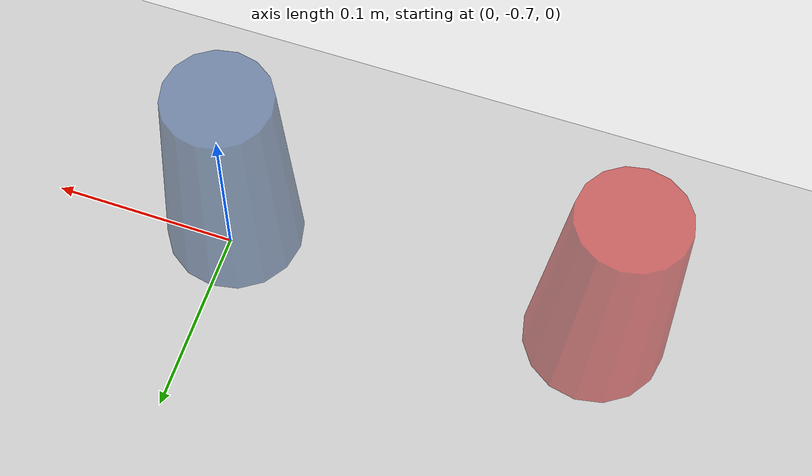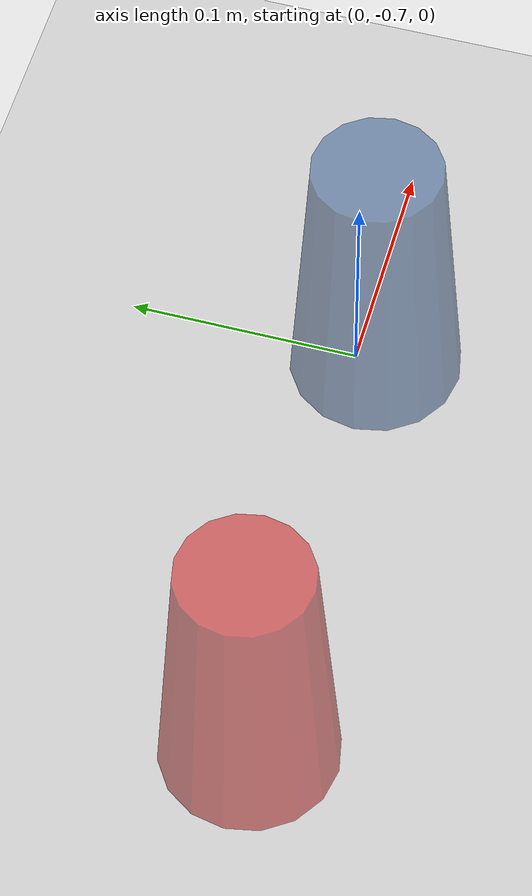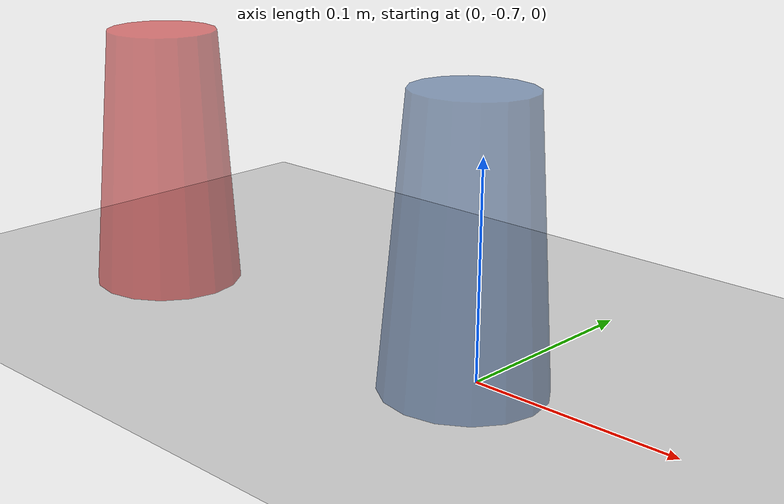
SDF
<sdf version="1.6">
 <world name="default">
  <light name="sun" type="directional">
   <pose>0 0 10 0 -0 0</pose>
   <diffuse>0.8 0.8 0.8 1</diffuse>
   <specular>0.2 0.2 0.2 1</specular>
   <attenuation>
    <range>1000</range>
    <constant>0.9</constant>
    <linear>0.01</linear>
    <quadratic>0.001</quadratic>
   </attenuation>
   <direction>-0.5 0.1 -0.9</direction>
  </light>
  <model name="ground_plane">
   <static>1</static>
   <link name="link">
    <collision name="collision">
     <geometry><plane><normal>0 0 1</normal><size>100 100</size></plane></geometry>
     <surface>
      <contact><collide_bitmask>65535</collide_bitmask></contact>
      <friction><ode><mu>100</mu><mu2>50</mu2></ode></friction>
     </surface>
    </collision>
    <visual name="visual">
     <cast_shadows>0</cast_shadows>
     <geometry><plane><normal>0 0 1</normal><size>100 100</size></plane></geometry>
     <material>
      <script><uri>file://media/materials/scripts/gazebo.material</uri><name>Gazebo/Grey</name></script>
     </material>
    </visual>
   </link>
  </model>
  <gravity>0 0 -9.8</gravity>
  <magnetic_field>6e-06 2.3e-05 -4.2e-05</magnetic_field>
  <atmosphere type="adiabatic"/>
  <physics name="default_physics" default="0" type="ode">
   <max_step_size>0.001</max_step_size>
   <real_time_factor>1</real_time_factor>
   <real_time_update_rate>1000</real_time_update_rate>
  </physics>
  <scene><ambient>0.4 0.4 0.4 1</ambient><background>0.7 0.7 0.7 1</background><shadows>1</shadows></scene>
  <spherical_coordinates>
   <surface_model>EARTH_WGS84</surface_model>
   <latitude_deg>0</latitude_deg>
   <longitude_deg>0</longitude_deg>
   <elevation>0</elevation>
   <heading_deg>0</heading_deg>
  </spherical_coordinates>
  <model name="red_plastic_cup">
   <link name="link">
    <pose>0 0 0.065 3.1254 -0 0</pose>
    <inertial>
     <mass>0.0599</mass>
     <inertia>
      <ixx>0.0003029</ixx>
      <ixy>0</ixy>
      <ixz>0</ixz>
      <iyy>0.0003029</iyy>
      <iyz>0</iyz>
      <izz>3.288e-05</izz>
     </inertia>
    </inertial>
    <visual name="visual">
     <geometry><mesh><uri>model://plastic_cup/meshes/plastic_cup.dae</uri></mesh></geometry>
     <material>
      <script><uri>file://media/materials/scripts/gazebo.material</uri><name>Gazebo/GreyTransparent</name></script>
      <shader type="pixel"><normal_map>__default__</normal_map></shader>
      <ambient>0.8 0 0 1</ambient>
      <diffuse>0.8 0 0 1</diffuse>
      <specular>0.8 0 0 1</specular>
      <emissive>0.8 0 0 1</emissive>
     </material>
    </visual>
    <collision name="collision">
     <geometry>
      <mesh><uri>/home/creoulo/.gazebo/models/plastic_cup/meshes/plastic_cup.dae</uri><scale>1 1 1</scale></mesh>
     </geometry>
     <surface>
      <friction>
       <ode><mu>1</mu><mu2>1</mu2><fdir1>0 0 0</fdir1><slip1>0</slip1><slip2>0</slip2></ode>
       <torsional>
        <coefficient>1</coefficient>
        <patch_radius>0</patch_radius>
        <surface_radius>0.01</surface_radius>
        <use_patch_radius>0</use_patch_radius>
        <ode><slip>0</slip></ode>
       </torsional>
      </friction>
      <bounce><restitution_coefficient>0</restitution_coefficient><threshold>1e+06</threshold></bounce>
      <contact>
       <collide_without_contact>0</collide_without_contact>
       <collide_without_contact_bitmask>1</collide_without_contact_bitmask>
       <collide_bitmask>1</collide_bitmask>
       <ode>
        <soft_cfm>0</soft_cfm>
        <soft_erp>0.2</soft_erp>
        <kp>100000</kp>
        <kd>100</kd>
        <max_vel>100</max_vel>
        <min_depth>0.001</min_depth>
       </ode>
       <bullet>
        <split_impulse>1</split_impulse>
        <split_impulse_penetration_threshold>-0.01</split_impulse_penetration_threshold>
        <soft_cfm>0</soft_cfm>
        <soft_erp>0.2</soft_erp>
        <kp>100000</kp>
        <kd>100</kd>
       </bullet>
      </contact>
     </surface>
    </collision>
   </link>
   <static>0</static>
   <pose>-0.200014 -0.700007 -0.008333 0.010251 0.001232 4.8e-05</pose>
  </model>
  <model name="blue_plastic_cup">
   <link name="link">
    <pose>0 0 0.065 3.1254 -0 0</pose>
    <inertial>
     <mass>0.0599</mass>
     <inertia>
      <ixx>0.0003029</ixx>
      <ixy>0</ixy>
      <ixz>0</ixz>
      <iyy>0.0003029</iyy>
      <iyz>0</iyz>
      <izz>3.288e-05</izz>
     </inertia>
    </inertial>
    <visual name="visual">
     <geometry><mesh><uri>model://plastic_cup/meshes/plastic_cup.dae</uri></mesh></geometry>
     <material>
      <script><uri>file://media/materials/scripts/gazebo.material</uri><name>Gazebo/GreyTransparent</name></script>
      <shader type="pixel"><normal_map>__default__</normal_map></shader>
      <ambient>0.125 0.29 0.529 1</ambient>
      <diffuse>0.125 0.29 0.529 1</diffuse>
      <specular>0.125 0.29 0.529 1</specular>
      <emissive>0.125 0.29 0.529 1</emissive>
     </material>
    </visual>
    <collision name="collision">
     <geometry>
      <mesh><uri>/home/creoulo/.gazebo/models/plastic_cup/meshes/plastic_cup.dae</uri><scale>1 1 1</scale></mesh>
     </geometry>
     <surface>
      <friction>
       <ode><mu>1</mu><mu2>1</mu2><fdir1>0 0 0</fdir1><slip1>0</slip1><slip2>0</slip2></ode>
       <torsional>
        <coefficient>1</coefficient>
        <patch_radius>0</patch_radius>
        <surface_radius>0.01</surface_radius>
        <use_patch_radius>0</use_patch_radius>
        <ode><slip>0</slip></ode>
       </torsional>
      </friction>
      <bounce><restitution_coefficient>0</restitution_coefficient><threshold>1e+06</threshold></bounce>
      <contact>
       <collide_without_contact>0</collide_without_contact>
       <collide_without_contact_bitmask>1</collide_without_contact_bitmask>
       <collide_bitmask>1</collide_bitmask>
       <ode>
        <soft_cfm>0</soft_cfm>
        <soft_erp>0.2</soft_erp>
        <kp>100000</kp>
        <kd>100</kd>
        <max_vel>100</max_vel>
        <min_depth>0.001</min_depth>
       </ode>
       <bullet>
        <split_impulse>1</split_impulse>
        <split_impulse_penetration_threshold>-0.01</split_impulse_penetration_threshold>
        <soft_cfm>0</soft_cfm>
        <soft_erp>0.2</soft_erp>
        <kp>100000</kp>
        <kd>100</kd>
       </bullet>
      </contact>
     </surface>
    </collision>
   </link>
   <static>0</static>
   <pose>2e-06 -0.700077 -0.008096 0.001286 -0.000886 3.7e-05</pose>
  </model>
 </world>
</sdf>
